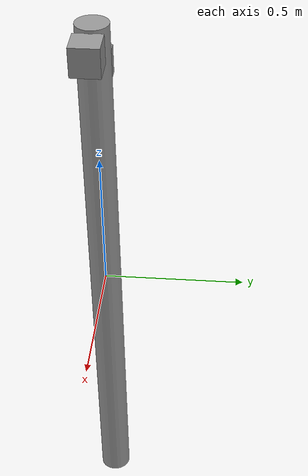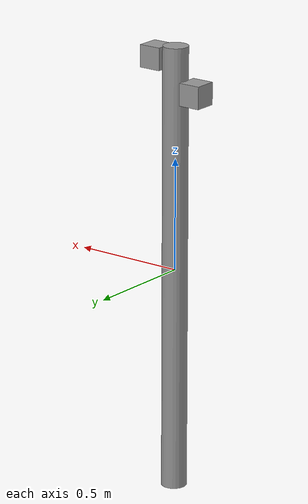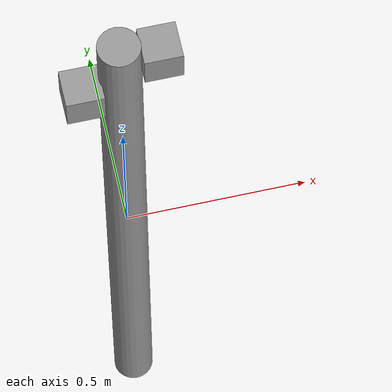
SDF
<?xml version='1.0'?>
<sdf version='1.7'>
  <model name='fira_eletrical'>
    <link name='link_2'>
      <inertial>
        <mass>0.0126915</mass>
        <inertia>
          <ixx>0.00424056</ixx>
          <ixy>0</ixy>
          <ixz>0</ixz>
          <iyy>0.00424056</iyy>
          <iyz>0</iyz>
          <izz>2.014e-05</izz>
        </inertia>
        <pose>0 0 0 0 -0 0</pose>
      </inertial>
      <pose>0 0 0 0 -0 0</pose>
      <gravity>0</gravity>
      <self_collide>0</self_collide>
      <kinematic>0</kinematic>
      <enable_wind>0</enable_wind>
      <visual name='visual'>
        <pose>0 0 0 0 -0 0</pose>
        <geometry>
          <cylinder>
            <radius>0.056339</radius>
            <length>2</length>
          </cylinder>
        </geometry>
        <material>
          <lighting>1</lighting>
          <script>
            <uri>file://media/materials/scripts/gazebo.material</uri>
            <name>Gazebo/Grey</name>
          </script>
          <shader type='pixel'>
            <normal_map>__default__</normal_map>
          </shader>
          <ambient>0.3 0.3 0.3 1</ambient>
          <diffuse>0.7 0.7 0.7 1</diffuse>
          <specular>0.01 0.01 0.01 1</specular>
          <emissive>0 0 0 1</emissive>
        </material>
        <transparency>0</transparency>
        <cast_shadows>1</cast_shadows>
      </visual>
      <collision name='collision'>
        <laser_retro>0</laser_retro>
        <max_contacts>10</max_contacts>
        <pose>0 0 0 0 -0 0</pose>
        <geometry>
          <cylinder>
            <radius>0.056339</radius>
            <length>2</length>
          </cylinder>
        </geometry>
        <surface>
          <friction>
            <ode>
              <mu>1</mu>
              <mu2>1</mu2>
              <fdir1>0 0 0</fdir1>
              <slip1>0</slip1>
              <slip2>0</slip2>
            </ode>
            <torsional>
              <coefficient>1</coefficient>
              <patch_radius>0</patch_radius>
              <surface_radius>0</surface_radius>
              <use_patch_radius>1</use_patch_radius>
              <ode>
                <slip>0</slip>
              </ode>
            </torsional>
          </friction>
          <bounce>
            <restitution_coefficient>0</restitution_coefficient>
            <threshold>1e+06</threshold>
          </bounce>
          <contact>
            <collide_without_contact>0</collide_without_contact>
            <collide_without_contact_bitmask>1</collide_without_contact_bitmask>
            <collide_bitmask>1</collide_bitmask>
            <ode>
              <soft_cfm>0</soft_cfm>
              <soft_erp>0.2</soft_erp>
              <kp>1e+13</kp>
              <kd>1</kd>
              <max_vel>0.01</max_vel>
              <min_depth>0</min_depth>
            </ode>
            <bullet>
              <split_impulse>1</split_impulse>
              <split_impulse_penetration_threshold>-0.01</split_impulse_penetration_threshold>
              <soft_cfm>0</soft_cfm>
              <soft_erp>0.2</soft_erp>
              <kp>1e+13</kp>
              <kd>1</kd>
            </bullet>
          </contact>
        </surface>
      </collision>
    </link>
    <link name='link_7'>
      <inertial>
        <mass>0.00202505</mass>
        <inertia>
          <ixx>5.04e-06</ixx>
          <ixy>0</ixy>
          <ixz>0</ixz>
          <iyy>5.34e-06</iyy>
          <iyz>0</iyz>
          <izz>6.02e-06</izz>
        </inertia>
        <pose>0 0 0 0 -0 0</pose>
      </inertial>
      <pose>0.103108 -0.004851 0.939738 0 -0 0</pose>
      <gravity>1</gravity>
      <self_collide>0</self_collide>
      <kinematic>0</kinematic>
      <enable_wind>0</enable_wind>
      <visual name='visual'>
        <pose>0 0 0 0 -0 0</pose>
        <geometry>
          <box>
            <size>0.1 0.1 0.1</size>
          </box>
        </geometry>
        <material>
          <lighting>1</lighting>
          <script>
            <uri>file://media/materials/scripts/gazebo.material</uri>
            <name>Gazebo/Grey</name>
          </script>
          <shader type='pixel'>
            <normal_map>__default__</normal_map>
          </shader>
          <ambient>0.3 0.3 0.3 1</ambient>
          <diffuse>0.7 0.7 0.7 1</diffuse>
          <specular>0.01 0.01 0.01 1</specular>
          <emissive>0 0 0 1</emissive>
        </material>
        <transparency>0</transparency>
        <cast_shadows>1</cast_shadows>
      </visual>
      <collision name='collision'>
        <laser_retro>0</laser_retro>
        <max_contacts>10</max_contacts>
        <pose>0 0 0 0 -0 0</pose>
        <geometry>
          <box>
            <size>0.136901 0.130094 0.113701</size>
          </box>
        </geometry>
        <surface>
          <friction>
            <ode>
              <mu>1</mu>
              <mu2>1</mu2>
              <fdir1>0 0 0</fdir1>
              <slip1>0</slip1>
              <slip2>0</slip2>
            </ode>
            <torsional>
              <coefficient>1</coefficient>
              <patch_radius>0</patch_radius>
              <surface_radius>0</surface_radius>
              <use_patch_radius>1</use_patch_radius>
              <ode>
                <slip>0</slip>
              </ode>
            </torsional>
          </friction>
          <bounce>
            <restitution_coefficient>0</restitution_coefficient>
            <threshold>1e+06</threshold>
          </bounce>
          <contact>
            <collide_without_contact>0</collide_without_contact>
            <collide_without_contact_bitmask>1</collide_without_contact_bitmask>
            <collide_bitmask>1</collide_bitmask>
            <ode>
              <soft_cfm>0</soft_cfm>
              <soft_erp>0.2</soft_erp>
              <kp>1e+13</kp>
              <kd>1</kd>
              <max_vel>0.01</max_vel>
              <min_depth>0</min_depth>
            </ode>
            <bullet>
              <split_impulse>1</split_impulse>
              <split_impulse_penetration_threshold>-0.01</split_impulse_penetration_threshold>
              <soft_cfm>0</soft_cfm>
              <soft_erp>0.2</soft_erp>
              <kp>1e+13</kp>
              <kd>1</kd>
            </bullet>
          </contact>
        </surface>
      </collision>
    </link>
    <link name='link_7_clone_0'>
      <inertial>
        <mass>0.00202505</mass>
        <inertia>
          <ixx>5.04e-06</ixx>
          <ixy>0</ixy>
          <ixz>0</ixz>
          <iyy>5.34e-06</iyy>
          <iyz>0</iyz>
          <izz>6.02e-06</izz>
        </inertia>
        <pose>0 0 0 0 -0 0</pose>
      </inertial>
      <pose>-0.100902 -0.008993 0.802997 0 -0 0</pose>
      <gravity>1</gravity>
      <self_collide>0</self_collide>
      <kinematic>0</kinematic>
      <enable_wind>0</enable_wind>
      <visual name='visual'>
        <pose>0 0 0 0 -0 0</pose>
        <geometry>
          <box>
            <size>0.1 0.1 0.1</size>
          </box>
        </geometry>
        <material>
          <lighting>1</lighting>
          <script>
            <uri>file://media/materials/scripts/gazebo.material</uri>
            <name>Gazebo/Grey</name>
          </script>
          <shader type='pixel'>
            <normal_map>__default__</normal_map>
          </shader>
          <ambient>0.3 0.3 0.3 1</ambient>
          <diffuse>0.7 0.7 0.7 1</diffuse>
          <specular>0.01 0.01 0.01 1</specular>
          <emissive>0 0 0 1</emissive>
        </material>
        <transparency>0</transparency>
        <cast_shadows>1</cast_shadows>
      </visual>
      <collision name='collision'>
        <laser_retro>0</laser_retro>
        <max_contacts>10</max_contacts>
        <pose>0 0 0 0 -0 0</pose>
        <geometry>
          <box>
            <size>0.1 0.1 0.1</size>
          </box>
        </geometry>
        <surface>
          <friction>
            <ode>
              <mu>1</mu>
              <mu2>1</mu2>
              <fdir1>0 0 0</fdir1>
              <slip1>0</slip1>
              <slip2>0</slip2>
            </ode>
            <torsional>
              <coefficient>1</coefficient>
              <patch_radius>0</patch_radius>
              <surface_radius>0</surface_radius>
              <use_patch_radius>1</use_patch_radius>
              <ode>
                <slip>0</slip>
              </ode>
            </torsional>
          </friction>
          <bounce>
            <restitution_coefficient>0</restitution_coefficient>
            <threshold>1e+06</threshold>
          </bounce>
          <contact>
            <collide_without_contact>0</collide_without_contact>
            <collide_without_contact_bitmask>1</collide_without_contact_bitmask>
            <collide_bitmask>1</collide_bitmask>
            <ode>
              <soft_cfm>0</soft_cfm>
              <soft_erp>0.2</soft_erp>
              <kp>1e+13</kp>
              <kd>1</kd>
              <max_vel>0.01</max_vel>
              <min_depth>0</min_depth>
            </ode>
            <bullet>
              <split_impulse>1</split_impulse>
              <split_impulse_penetration_threshold>-0.01</split_impulse_penetration_threshold>
              <soft_cfm>0</soft_cfm>
              <soft_erp>0.2</soft_erp>
              <kp>1e+13</kp>
              <kd>1</kd>
            </bullet>
          </contact>
        </surface>
      </collision>
    </link>
    <static>1</static>
    <allow_auto_disable>1</allow_auto_disable>
  </model>
</sdf>
